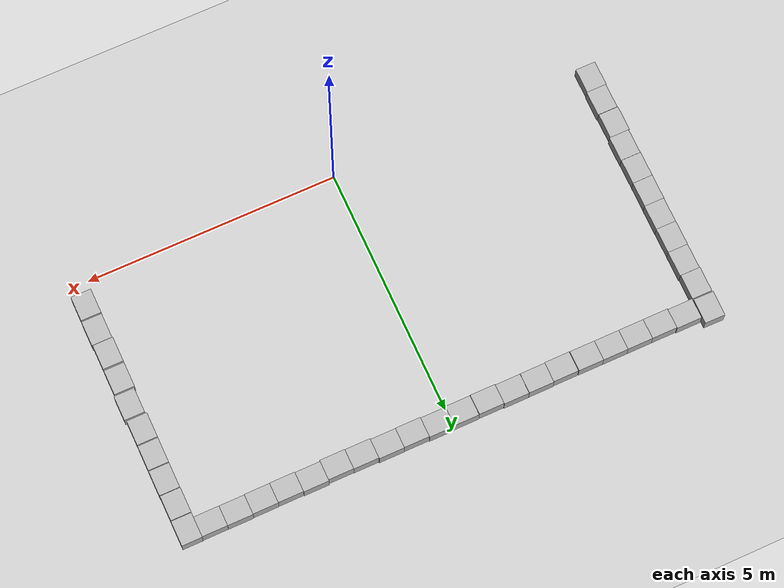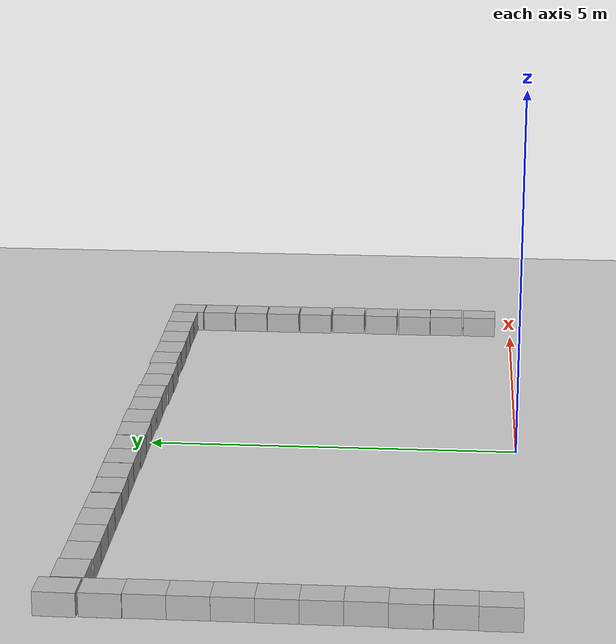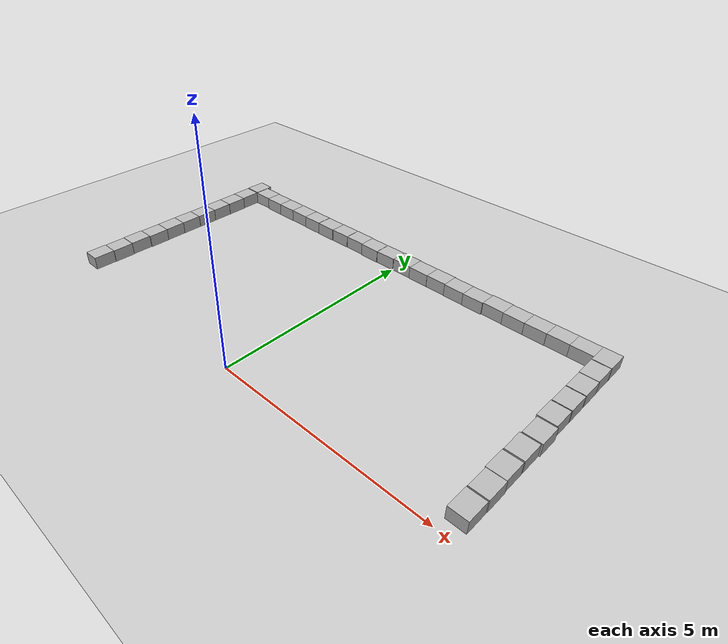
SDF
<sdf version="1.7">
 <world name="default">
  <model name="ground_plane">
   <static>1</static>
   <link name="link">
    <collision name="collision">
     <geometry><plane><normal>0 0 1</normal><size>100 100</size></plane></geometry>
     <surface>
      <contact><collide_bitmask>65535</collide_bitmask></contact>
      <friction><ode><mu>100</mu><mu2>50</mu2></ode></friction>
     </surface>
    </collision>
    <visual name="visual">
     <cast_shadows>0</cast_shadows>
     <geometry><plane><normal>0 0 1</normal><size>100 100</size></plane></geometry>
     <material>
      <script><uri>file://media/materials/scripts/gazebo.material</uri><name>Gazebo/Grey</name></script>
     </material>
    </visual>
   </link>
  </model>
  <model name="cardboard_box">
   <pose>5.20797 5.16251 0.149 0 0 -1.57037</pose>
   <link name="link">
    <inertial>
     <mass>2</mass>
     <inertia>
      <ixx>0.0416667</ixx>
      <ixy>0</ixy>
      <ixz>0</ixz>
      <iyy>0.0566667</iyy>
      <iyz>0</iyz>
      <izz>0.0683333</izz>
     </inertia>
    </inertial>
    <collision name="collision">
     <geometry><box><size>0.5 0.4 0.3</size></box></geometry>
     <surface>
      <friction><ode><mu>1</mu><mu2>1</mu2></ode></friction>
      <contact><ode><kp>1e+07</kp><kd>1</kd><min_depth>0.001</min_depth><max_vel>0.1</max_vel></ode></contact>
     </surface>
    </collision>
    <visual name="visual">
     <pose>0 0 -0.15 0 -0 0</pose>
     <geometry>
      <mesh><uri>model://cardboard_box/meshes/cardboard_box.dae</uri><scale>1.25932 1.00745 0.755591</scale></mesh>
     </geometry>
    </visual>
   </link>
  </model>
  <model name="cardboard_box_clone_0">
   <pose>4.75812 5.20518 0.149 0 -0 5.5e-05</pose>
   <link name="link">
    <inertial>
     <mass>2</mass>
     <inertia>
      <ixx>0.0416667</ixx>
      <ixy>0</ixy>
      <ixz>0</ixz>
      <iyy>0.0566667</iyy>
      <iyz>0</iyz>
      <izz>0.0683333</izz>
     </inertia>
    </inertial>
    <collision name="collision">
     <geometry><box><size>0.5 0.4 0.3</size></box></geometry>
     <surface>
      <friction><ode><mu>1</mu><mu2>1</mu2></ode></friction>
      <contact><ode><kp>1e+07</kp><kd>1</kd><min_depth>0.001</min_depth><max_vel>0.1</max_vel></ode></contact>
     </surface>
    </collision>
    <visual name="visual">
     <pose>0 0 -0.15 0 -0 0</pose>
     <geometry>
      <mesh><uri>model://cardboard_box/meshes/cardboard_box.dae</uri><scale>1.25932 1.00745 0.755591</scale></mesh>
     </geometry>
    </visual>
   </link>
  </model>
  <model name="cardboard_box_clone">
   <pose>5.20585 4.65107 0.149 0 0 -1.57145</pose>
   <link name="link">
    <inertial>
     <mass>2</mass>
     <inertia>
      <ixx>0.0416667</ixx>
      <ixy>0</ixy>
      <ixz>0</ixz>
      <iyy>0.0566667</iyy>
      <iyz>0</iyz>
      <izz>0.0683333</izz>
     </inertia>
    </inertial>
    <collision name="collision">
     <geometry><box><size>0.5 0.4 0.3</size></box></geometry>
     <surface>
      <friction><ode><mu>1</mu><mu2>1</mu2></ode></friction>
      <contact><ode><kp>1e+07</kp><kd>1</kd><min_depth>0.001</min_depth><max_vel>0.1</max_vel></ode></contact>
     </surface>
    </collision>
    <visual name="visual">
     <pose>0 0 -0.15 0 -0 0</pose>
     <geometry>
      <mesh><uri>model://cardboard_box/meshes/cardboard_box.dae</uri><scale>1.25932 1.00745 0.755591</scale></mesh>
     </geometry>
    </visual>
   </link>
  </model>
  <model name="cardboard_box_clone_1">
   <pose>5.21075 4.14182 0.149 0 0 -1.57145</pose>
   <link name="link">
    <inertial>
     <mass>2</mass>
     <inertia>
      <ixx>0.0416667</ixx>
      <ixy>0</ixy>
      <ixz>0</ixz>
      <iyy>0.0566667</iyy>
      <iyz>0</iyz>
      <izz>0.0683333</izz>
     </inertia>
    </inertial>
    <collision name="collision">
     <geometry><box><size>0.5 0.4 0.3</size></box></geometry>
     <surface>
      <friction><ode><mu>1</mu><mu2>1</mu2></ode></friction>
      <contact><ode><kp>1e+07</kp><kd>1</kd><min_depth>0.001</min_depth><max_vel>0.1</max_vel></ode></contact>
     </surface>
    </collision>
    <visual name="visual">
     <pose>0 0 -0.15 0 -0 0</pose>
     <geometry>
      <mesh><uri>model://cardboard_box/meshes/cardboard_box.dae</uri><scale>1.25932 1.00745 0.755591</scale></mesh>
     </geometry>
    </visual>
   </link>
  </model>
  <model name="cardboard_box_clone_2">
   <pose>5.20912 3.62631 0.149 0 0 -1.57145</pose>
   <link name="link">
    <inertial>
     <mass>2</mass>
     <inertia>
      <ixx>0.0416667</ixx>
      <ixy>0</ixy>
      <ixz>0</ixz>
      <iyy>0.0566667</iyy>
      <iyz>0</iyz>
      <izz>0.0683333</izz>
     </inertia>
    </inertial>
    <collision name="collision">
     <geometry><box><size>0.5 0.4 0.3</size></box></geometry>
     <surface>
      <friction><ode><mu>1</mu><mu2>1</mu2></ode></friction>
      <contact><ode><kp>1e+07</kp><kd>1</kd><min_depth>0.001</min_depth><max_vel>0.1</max_vel></ode></contact>
     </surface>
    </collision>
    <visual name="visual">
     <pose>0 0 -0.15 0 -0 0</pose>
     <geometry>
      <mesh><uri>model://cardboard_box/meshes/cardboard_box.dae</uri><scale>1.25932 1.00745 0.755591</scale></mesh>
     </geometry>
    </visual>
   </link>
  </model>
  <model name="cardboard_box_clone_3">
   <pose>5.20747 3.10773 0.149 0 0 -1.57145</pose>
   <link name="link">
    <inertial>
     <mass>2</mass>
     <inertia>
      <ixx>0.0416667</ixx>
      <ixy>0</ixy>
      <ixz>0</ixz>
      <iyy>0.0566667</iyy>
      <iyz>0</iyz>
      <izz>0.0683333</izz>
     </inertia>
    </inertial>
    <collision name="collision">
     <geometry><box><size>0.5 0.4 0.3</size></box></geometry>
     <surface>
      <friction><ode><mu>1</mu><mu2>1</mu2></ode></friction>
      <contact><ode><kp>1e+07</kp><kd>1</kd><min_depth>0.001</min_depth><max_vel>0.1</max_vel></ode></contact>
     </surface>
    </collision>
    <visual name="visual">
     <pose>0 0 -0.15 0 -0 0</pose>
     <geometry>
      <mesh><uri>model://cardboard_box/meshes/cardboard_box.dae</uri><scale>1.25932 1.00745 0.755591</scale></mesh>
     </geometry>
    </visual>
   </link>
  </model>
  <model name="cardboard_box_clone_3_clone">
   <pose>5.23714 2.581 0.149 0 0 -1.57059</pose>
   <link name="link">
    <inertial>
     <mass>2</mass>
     <inertia>
      <ixx>0.0416667</ixx>
      <ixy>0</ixy>
      <ixz>0</ixz>
      <iyy>0.0566667</iyy>
      <iyz>0</iyz>
      <izz>0.0683333</izz>
     </inertia>
    </inertial>
    <collision name="collision">
     <geometry><box><size>0.5 0.4 0.3</size></box></geometry>
     <surface>
      <friction><ode><mu>1</mu><mu2>1</mu2></ode></friction>
      <contact><ode><kp>1e+07</kp><kd>1</kd><min_depth>0.001</min_depth><max_vel>0.1</max_vel></ode></contact>
     </surface>
    </collision>
    <visual name="visual">
     <pose>0 0 -0.15 0 -0 0</pose>
     <geometry>
      <mesh><uri>model://cardboard_box/meshes/cardboard_box.dae</uri><scale>1.25932 1.00745 0.755591</scale></mesh>
     </geometry>
    </visual>
   </link>
  </model>
  <model name="cardboard_box_clone_3_clone_0">
   <pose>5.21488 2.0557 0.149 -0 -0 -1.57057</pose>
   <link name="link">
    <inertial>
     <mass>2</mass>
     <inertia>
      <ixx>0.0416667</ixx>
      <ixy>0</ixy>
      <ixz>0</ixz>
      <iyy>0.0566667</iyy>
      <iyz>0</iyz>
      <izz>0.0683333</izz>
     </inertia>
    </inertial>
    <collision name="collision">
     <geometry><box><size>0.5 0.4 0.3</size></box></geometry>
     <surface>
      <friction><ode><mu>1</mu><mu2>1</mu2></ode></friction>
      <contact><ode><kp>1e+07</kp><kd>1</kd><min_depth>0.001</min_depth><max_vel>0.1</max_vel></ode></contact>
     </surface>
    </collision>
    <visual name="visual">
     <pose>0 0 -0.15 0 -0 0</pose>
     <geometry>
      <mesh><uri>model://cardboard_box/meshes/cardboard_box.dae</uri><scale>1.25932 1.00745 0.755591</scale></mesh>
     </geometry>
    </visual>
   </link>
  </model>
  <model name="cardboard_box_clone_3_clone_1">
   <pose>5.21446 1.52585 0.149 0 0 -1.57083</pose>
   <link name="link">
    <inertial>
     <mass>2</mass>
     <inertia>
      <ixx>0.0416667</ixx>
      <ixy>0</ixy>
      <ixz>0</ixz>
      <iyy>0.0566667</iyy>
      <iyz>0</iyz>
      <izz>0.0683333</izz>
     </inertia>
    </inertial>
    <collision name="collision">
     <geometry><box><size>0.5 0.4 0.3</size></box></geometry>
     <surface>
      <friction><ode><mu>1</mu><mu2>1</mu2></ode></friction>
      <contact><ode><kp>1e+07</kp><kd>1</kd><min_depth>0.001</min_depth><max_vel>0.1</max_vel></ode></contact>
     </surface>
    </collision>
    <visual name="visual">
     <pose>0 0 -0.15 0 -0 0</pose>
     <geometry>
      <mesh><uri>model://cardboard_box/meshes/cardboard_box.dae</uri><scale>1.25932 1.00745 0.755591</scale></mesh>
     </geometry>
    </visual>
   </link>
  </model>
  <model name="cardboard_box_clone_3_clone_2">
   <pose>5.22751 1.02138 0.149 0 -0 -1.57082</pose>
   <link name="link">
    <inertial>
     <mass>2</mass>
     <inertia>
      <ixx>0.0416667</ixx>
      <ixy>0</ixy>
      <ixz>0</ixz>
      <iyy>0.0566667</iyy>
      <iyz>0</iyz>
      <izz>0.0683333</izz>
     </inertia>
    </inertial>
    <collision name="collision">
     <geometry><box><size>0.5 0.4 0.3</size></box></geometry>
     <surface>
      <friction><ode><mu>1</mu><mu2>1</mu2></ode></friction>
      <contact><ode><kp>1e+07</kp><kd>1</kd><min_depth>0.001</min_depth><max_vel>0.1</max_vel></ode></contact>
     </surface>
    </collision>
    <visual name="visual">
     <pose>0 0 -0.15 0 -0 0</pose>
     <geometry>
      <mesh><uri>model://cardboard_box/meshes/cardboard_box.dae</uri><scale>1.25932 1.00745 0.755591</scale></mesh>
     </geometry>
    </visual>
   </link>
  </model>
  <model name="cardboard_box_clone_3_clone_3">
   <pose>5.22362 0.496907 0.149 -0 -0 -1.57095</pose>
   <link name="link">
    <inertial>
     <mass>2</mass>
     <inertia>
      <ixx>0.0416667</ixx>
      <ixy>0</ixy>
      <ixz>0</ixz>
      <iyy>0.0566667</iyy>
      <iyz>0</iyz>
      <izz>0.0683333</izz>
     </inertia>
    </inertial>
    <collision name="collision">
     <geometry><box><size>0.5 0.4 0.3</size></box></geometry>
     <surface>
      <friction><ode><mu>1</mu><mu2>1</mu2></ode></friction>
      <contact><ode><kp>1e+07</kp><kd>1</kd><min_depth>0.001</min_depth><max_vel>0.1</max_vel></ode></contact>
     </surface>
    </collision>
    <visual name="visual">
     <pose>0 0 -0.15 0 -0 0</pose>
     <geometry>
      <mesh><uri>model://cardboard_box/meshes/cardboard_box.dae</uri><scale>1.25932 1.00745 0.755591</scale></mesh>
     </geometry>
    </visual>
   </link>
  </model>
  <model name="cardboard_box_clone_3_clone_12_clone_clone_1_clone_5">
   <pose>-5.22101 0.269066 0.149 0 -0 -1.57092</pose>
   <link name="link">
    <inertial>
     <mass>2</mass>
     <inertia>
      <ixx>0.0416667</ixx>
      <ixy>0</ixy>
      <ixz>0</ixz>
      <iyy>0.0566667</iyy>
      <iyz>0</iyz>
      <izz>0.0683333</izz>
     </inertia>
    </inertial>
    <collision name="collision">
     <geometry><box><size>0.5 0.4 0.3</size></box></geometry>
     <surface>
      <friction><ode><mu>1</mu><mu2>1</mu2></ode></friction>
      <contact><ode><kp>1e+07</kp><kd>1</kd><min_depth>0.001</min_depth><max_vel>0.1</max_vel></ode></contact>
     </surface>
    </collision>
    <visual name="visual">
     <pose>0 0 -0.15 0 -0 0</pose>
     <geometry>
      <mesh><uri>model://cardboard_box/meshes/cardboard_box.dae</uri><scale>1.25932 1.00745 0.755591</scale></mesh>
     </geometry>
    </visual>
   </link>
  </model>
  <model name="cardboard_box_clone_3_clone_12_clone_clone_1_clone_5_clone">
   <pose>-5.20919 0.768373 0.149 0 0 -1.57092</pose>
   <link name="link">
    <inertial>
     <mass>2</mass>
     <inertia>
      <ixx>0.0416667</ixx>
      <ixy>0</ixy>
      <ixz>0</ixz>
      <iyy>0.0566667</iyy>
      <iyz>0</iyz>
      <izz>0.0683333</izz>
     </inertia>
    </inertial>
    <collision name="collision">
     <geometry><box><size>0.5 0.4 0.3</size></box></geometry>
     <surface>
      <friction><ode><mu>1</mu><mu2>1</mu2></ode></friction>
      <contact><ode><kp>1e+07</kp><kd>1</kd><min_depth>0.001</min_depth><max_vel>0.1</max_vel></ode></contact>
     </surface>
    </collision>
    <visual name="visual">
     <pose>0 0 -0.15 0 -0 0</pose>
     <geometry>
      <mesh><uri>model://cardboard_box/meshes/cardboard_box.dae</uri><scale>1.25932 1.00745 0.755591</scale></mesh>
     </geometry>
    </visual>
   </link>
  </model>
  <model name="cardboard_box_clone_3_clone_12_clone_clone_1_clone_5_clone_0">
   <pose>-5.22042 1.27408 0.149 0 -0 -1.5714</pose>
   <link name="link">
    <inertial>
     <mass>2</mass>
     <inertia>
      <ixx>0.0416667</ixx>
      <ixy>0</ixy>
      <ixz>0</ixz>
      <iyy>0.0566667</iyy>
      <iyz>0</iyz>
      <izz>0.0683333</izz>
     </inertia>
    </inertial>
    <collision name="collision">
     <geometry><box><size>0.5 0.4 0.3</size></box></geometry>
     <surface>
      <friction><ode><mu>1</mu><mu2>1</mu2></ode></friction>
      <contact><ode><kp>1e+07</kp><kd>1</kd><min_depth>0.001</min_depth><max_vel>0.1</max_vel></ode></contact>
     </surface>
    </collision>
    <visual name="visual">
     <pose>0 0 -0.15 0 -0 0</pose>
     <geometry>
      <mesh><uri>model://cardboard_box/meshes/cardboard_box.dae</uri><scale>1.25932 1.00745 0.755591</scale></mesh>
     </geometry>
    </visual>
   </link>
  </model>
  <model name="cardboard_box_clone_3_clone_12_clone_clone_1_clone_5_clone_1">
   <pose>-5.20005 1.7737 0.149 0 0 -1.57099</pose>
   <link name="link">
    <inertial>
     <mass>2</mass>
     <inertia>
      <ixx>0.0416667</ixx>
      <ixy>0</ixy>
      <ixz>0</ixz>
      <iyy>0.0566667</iyy>
      <iyz>0</iyz>
      <izz>0.0683333</izz>
     </inertia>
    </inertial>
    <collision name="collision">
     <geometry><box><size>0.5 0.4 0.3</size></box></geometry>
     <surface>
      <friction><ode><mu>1</mu><mu2>1</mu2></ode></friction>
      <contact><ode><kp>1e+07</kp><kd>1</kd><min_depth>0.001</min_depth><max_vel>0.1</max_vel></ode></contact>
     </surface>
    </collision>
    <visual name="visual">
     <pose>0 0 -0.15 0 -0 0</pose>
     <geometry>
      <mesh><uri>model://cardboard_box/meshes/cardboard_box.dae</uri><scale>1.25932 1.00745 0.755591</scale></mesh>
     </geometry>
    </visual>
   </link>
  </model>
  <model name="cardboard_box_clone_3_clone_12_clone_clone_1_clone_5_clone_2">
   <pose>-5.20466 2.27451 0.149 -0 -0 -1.57084</pose>
   <link name="link">
    <inertial>
     <mass>2</mass>
     <inertia>
      <ixx>0.0416667</ixx>
      <ixy>0</ixy>
      <ixz>0</ixz>
      <iyy>0.0566667</iyy>
      <iyz>0</iyz>
      <izz>0.0683333</izz>
     </inertia>
    </inertial>
    <collision name="collision">
     <geometry><box><size>0.5 0.4 0.3</size></box></geometry>
     <surface>
      <friction><ode><mu>1</mu><mu2>1</mu2></ode></friction>
      <contact><ode><kp>1e+07</kp><kd>1</kd><min_depth>0.001</min_depth><max_vel>0.1</max_vel></ode></contact>
     </surface>
    </collision>
    <visual name="visual">
     <pose>0 0 -0.15 0 -0 0</pose>
     <geometry>
      <mesh><uri>model://cardboard_box/meshes/cardboard_box.dae</uri><scale>1.25932 1.00745 0.755591</scale></mesh>
     </geometry>
    </visual>
   </link>
  </model>
  <model name="cardboard_box_clone_3_clone_12_clone_clone_1_clone_5_clone_3">
   <pose>-5.20316 2.7746 0.149 0 -0 -1.57052</pose>
   <link name="link">
    <inertial>
     <mass>2</mass>
     <inertia>
      <ixx>0.0416667</ixx>
      <ixy>0</ixy>
      <ixz>0</ixz>
      <iyy>0.0566667</iyy>
      <iyz>0</iyz>
      <izz>0.0683333</izz>
     </inertia>
    </inertial>
    <collision name="collision">
     <geometry><box><size>0.5 0.4 0.3</size></box></geometry>
     <surface>
      <friction><ode><mu>1</mu><mu2>1</mu2></ode></friction>
      <contact><ode><kp>1e+07</kp><kd>1</kd><min_depth>0.001</min_depth><max_vel>0.1</max_vel></ode></contact>
     </surface>
    </collision>
    <visual name="visual">
     <pose>0 0 -0.15 0 -0 0</pose>
     <geometry>
      <mesh><uri>model://cardboard_box/meshes/cardboard_box.dae</uri><scale>1.25932 1.00745 0.755591</scale></mesh>
     </geometry>
    </visual>
   </link>
  </model>
  <model name="cardboard_box_clone_3_clone_12_clone_clone_1_clone_5_clone_4">
   <pose>-5.19813 3.27387 0.149 0 0 -1.57011</pose>
   <link name="link">
    <inertial>
     <mass>2</mass>
     <inertia>
      <ixx>0.0416667</ixx>
      <ixy>0</ixy>
      <ixz>0</ixz>
      <iyy>0.0566667</iyy>
      <iyz>0</iyz>
      <izz>0.0683333</izz>
     </inertia>
    </inertial>
    <collision name="collision">
     <geometry><box><size>0.5 0.4 0.3</size></box></geometry>
     <surface>
      <friction><ode><mu>1</mu><mu2>1</mu2></ode></friction>
      <contact><ode><kp>1e+07</kp><kd>1</kd><min_depth>0.001</min_depth><max_vel>0.1</max_vel></ode></contact>
     </surface>
    </collision>
    <visual name="visual">
     <pose>0 0 -0.15 0 -0 0</pose>
     <geometry>
      <mesh><uri>model://cardboard_box/meshes/cardboard_box.dae</uri><scale>1.25932 1.00745 0.755591</scale></mesh>
     </geometry>
    </visual>
   </link>
  </model>
  <model name="cardboard_box_clone_3_clone_12_clone_clone_1_clone_5_clone_5">
   <pose>-5.19993 3.77344 0.149 0 0 -1.56923</pose>
   <link name="link">
    <inertial>
     <mass>2</mass>
     <inertia>
      <ixx>0.0416667</ixx>
      <ixy>0</ixy>
      <ixz>0</ixz>
      <iyy>0.0566667</iyy>
      <iyz>0</iyz>
      <izz>0.0683333</izz>
     </inertia>
    </inertial>
    <collision name="collision">
     <geometry><box><size>0.5 0.4 0.3</size></box></geometry>
     <surface>
      <friction><ode><mu>1</mu><mu2>1</mu2></ode></friction>
      <contact><ode><kp>1e+07</kp><kd>1</kd><min_depth>0.001</min_depth><max_vel>0.1</max_vel></ode></contact>
     </surface>
    </collision>
    <visual name="visual">
     <pose>0 0 -0.15 0 -0 0</pose>
     <geometry>
      <mesh><uri>model://cardboard_box/meshes/cardboard_box.dae</uri><scale>1.25932 1.00745 0.755591</scale></mesh>
     </geometry>
    </visual>
   </link>
  </model>
  <model name="cardboard_box_clone_3_clone_12_clone_clone_1_clone_5_clone_6">
   <pose>-5.19779 4.27355 0.149 0 -0 -1.56997</pose>
   <link name="link">
    <inertial>
     <mass>2</mass>
     <inertia>
      <ixx>0.0416667</ixx>
      <ixy>0</ixy>
      <ixz>0</ixz>
      <iyy>0.0566667</iyy>
      <iyz>0</iyz>
      <izz>0.0683333</izz>
     </inertia>
    </inertial>
    <collision name="collision">
     <geometry><box><size>0.5 0.4 0.3</size></box></geometry>
     <surface>
      <friction><ode><mu>1</mu><mu2>1</mu2></ode></friction>
      <contact><ode><kp>1e+07</kp><kd>1</kd><min_depth>0.001</min_depth><max_vel>0.1</max_vel></ode></contact>
     </surface>
    </collision>
    <visual name="visual">
     <pose>0 0 -0.15 0 -0 0</pose>
     <geometry>
      <mesh><uri>model://cardboard_box/meshes/cardboard_box.dae</uri><scale>1.25932 1.00745 0.755591</scale></mesh>
     </geometry>
    </visual>
   </link>
  </model>
  <model name="cardboard_box_clone_3_clone_12_clone_clone_1_clone_5_clone_7">
   <pose>-5.20764 4.77393 0.149 0 0 -1.57685</pose>
   <link name="link">
    <inertial>
     <mass>2</mass>
     <inertia>
      <ixx>0.0416667</ixx>
      <ixy>0</ixy>
      <ixz>0</ixz>
      <iyy>0.0566667</iyy>
      <iyz>0</iyz>
      <izz>0.0683333</izz>
     </inertia>
    </inertial>
    <collision name="collision">
     <geometry><box><size>0.5 0.4 0.3</size></box></geometry>
     <surface>
      <friction><ode><mu>1</mu><mu2>1</mu2></ode></friction>
      <contact><ode><kp>1e+07</kp><kd>1</kd><min_depth>0.001</min_depth><max_vel>0.1</max_vel></ode></contact>
     </surface>
    </collision>
    <visual name="visual">
     <pose>0 0 -0.15 0 -0 0</pose>
     <geometry>
      <mesh><uri>model://cardboard_box/meshes/cardboard_box.dae</uri><scale>1.25932 1.00745 0.755591</scale></mesh>
     </geometry>
    </visual>
   </link>
  </model>
  <model name="cardboard_box_clone_3_clone_12_clone_clone_1_clone_5_clone_8">
   <pose>-5.21767 5.29456 0.149 0 0 -1.58605</pose>
   <link name="link">
    <inertial>
     <mass>2</mass>
     <inertia>
      <ixx>0.0416667</ixx>
      <ixy>0</ixy>
      <ixz>0</ixz>
      <iyy>0.0566667</iyy>
      <iyz>0</iyz>
      <izz>0.0683333</izz>
     </inertia>
    </inertial>
    <collision name="collision">
     <geometry><box><size>0.5 0.4 0.3</size></box></geometry>
     <surface>
      <friction><ode><mu>1</mu><mu2>1</mu2></ode></friction>
      <contact><ode><kp>1e+07</kp><kd>1</kd><min_depth>0.001</min_depth><max_vel>0.1</max_vel></ode></contact>
     </surface>
    </collision>
    <visual name="visual">
     <pose>0 0 -0.15 0 -0 0</pose>
     <geometry>
      <mesh><uri>model://cardboard_box/meshes/cardboard_box.dae</uri><scale>1.25932 1.00745 0.755591</scale></mesh>
     </geometry>
    </visual>
   </link>
  </model>
  <model name="cardboard_box_clone_0_clone_clone_1_clone_clone_3_clone_3_clone_0_clone">
   <pose>-4.75199 5.21666 0.149 0 -0 0.000103</pose>
   <link name="link">
    <inertial>
     <mass>2</mass>
     <inertia>
      <ixx>0.0416667</ixx>
      <ixy>0</ixy>
      <ixz>0</ixz>
      <iyy>0.0566667</iyy>
      <iyz>0</iyz>
      <izz>0.0683333</izz>
     </inertia>
    </inertial>
    <collision name="collision">
     <geometry><box><size>0.5 0.4 0.3</size></box></geometry>
     <surface>
      <friction><ode><mu>1</mu><mu2>1</mu2></ode></friction>
      <contact><ode><kp>1e+07</kp><kd>1</kd><min_depth>0.001</min_depth><max_vel>0.1</max_vel></ode></contact>
     </surface>
    </collision>
    <visual name="visual">
     <pose>0 0 -0.15 0 -0 0</pose>
     <geometry>
      <mesh><uri>model://cardboard_box/meshes/cardboard_box.dae</uri><scale>1.25932 1.00745 0.755591</scale></mesh>
     </geometry>
    </visual>
   </link>
  </model>
  <model name="cardboard_box_clone_0_clone_clone_1_clone_clone_3_clone_3_clone_0_clone_clone">
   <pose>-4.25241 5.20223 0.149 0 -0 0.000138</pose>
   <link name="link">
    <inertial>
     <mass>2</mass>
     <inertia>
      <ixx>0.0416667</ixx>
      <ixy>0</ixy>
      <ixz>0</ixz>
      <iyy>0.0566667</iyy>
      <iyz>0</iyz>
      <izz>0.0683333</izz>
     </inertia>
    </inertial>
    <collision name="collision">
     <geometry><box><size>0.5 0.4 0.3</size></box></geometry>
     <surface>
      <friction><ode><mu>1</mu><mu2>1</mu2></ode></friction>
      <contact><ode><kp>1e+07</kp><kd>1</kd><min_depth>0.001</min_depth><max_vel>0.1</max_vel></ode></contact>
     </surface>
    </collision>
    <visual name="visual">
     <pose>0 0 -0.15 0 -0 0</pose>
     <geometry>
      <mesh><uri>model://cardboard_box/meshes/cardboard_box.dae</uri><scale>1.25932 1.00745 0.755591</scale></mesh>
     </geometry>
    </visual>
   </link>
  </model>
  <model name="cardboard_box_clone_0_clone_clone_1_clone_clone_3_clone_3_clone_0_clone_clone_0">
   <pose>-3.75339 5.20287 0.149 0 -0 0.000191</pose>
   <link name="link">
    <inertial>
     <mass>2</mass>
     <inertia>
      <ixx>0.0416667</ixx>
      <ixy>0</ixy>
      <ixz>0</ixz>
      <iyy>0.0566667</iyy>
      <iyz>0</iyz>
      <izz>0.0683333</izz>
     </inertia>
    </inertial>
    <collision name="collision">
     <geometry><box><size>0.5 0.4 0.3</size></box></geometry>
     <surface>
      <friction><ode><mu>1</mu><mu2>1</mu2></ode></friction>
      <contact><ode><kp>1e+07</kp><kd>1</kd><min_depth>0.001</min_depth><max_vel>0.1</max_vel></ode></contact>
     </surface>
    </collision>
    <visual name="visual">
     <pose>0 0 -0.15 0 -0 0</pose>
     <geometry>
      <mesh><uri>model://cardboard_box/meshes/cardboard_box.dae</uri><scale>1.25932 1.00745 0.755591</scale></mesh>
     </geometry>
    </visual>
   </link>
  </model>
  <model name="cardboard_box_clone_0_clone_clone_1_clone_clone_3_clone_3_clone_0_clone_clone_1">
   <pose>-3.25391 5.20345 0.149 0 -0 0.000266</pose>
   <link name="link">
    <inertial>
     <mass>2</mass>
     <inertia>
      <ixx>0.0416667</ixx>
      <ixy>0</ixy>
      <ixz>0</ixz>
      <iyy>0.0566667</iyy>
      <iyz>0</iyz>
      <izz>0.0683333</izz>
     </inertia>
    </inertial>
    <collision name="collision">
     <geometry><box><size>0.5 0.4 0.3</size></box></geometry>
     <surface>
      <friction><ode><mu>1</mu><mu2>1</mu2></ode></friction>
      <contact><ode><kp>1e+07</kp><kd>1</kd><min_depth>0.001</min_depth><max_vel>0.1</max_vel></ode></contact>
     </surface>
    </collision>
    <visual name="visual">
     <pose>0 0 -0.15 0 -0 0</pose>
     <geometry>
      <mesh><uri>model://cardboard_box/meshes/cardboard_box.dae</uri><scale>1.25932 1.00745 0.755591</scale></mesh>
     </geometry>
    </visual>
   </link>
  </model>
  <model name="cardboard_box_clone_0_clone_clone_1_clone_clone_3_clone_3_clone_0_clone_clone_2">
   <pose>-2.7545 5.20218 0.149 0 -0 0.000272</pose>
   <link name="link">
    <inertial>
     <mass>2</mass>
     <inertia>
      <ixx>0.0416667</ixx>
      <ixy>0</ixy>
      <ixz>0</ixz>
      <iyy>0.0566667</iyy>
      <iyz>0</iyz>
      <izz>0.0683333</izz>
     </inertia>
    </inertial>
    <collision name="collision">
     <geometry><box><size>0.5 0.4 0.3</size></box></geometry>
     <surface>
      <friction><ode><mu>1</mu><mu2>1</mu2></ode></friction>
      <contact><ode><kp>1e+07</kp><kd>1</kd><min_depth>0.001</min_depth><max_vel>0.1</max_vel></ode></contact>
     </surface>
    </collision>
    <visual name="visual">
     <pose>0 0 -0.15 0 -0 0</pose>
     <geometry>
      <mesh><uri>model://cardboard_box/meshes/cardboard_box.dae</uri><scale>1.25932 1.00745 0.755591</scale></mesh>
     </geometry>
    </visual>
   </link>
  </model>
  <model name="cardboard_box_clone_0_clone_clone_1_clone_clone_3_clone_3_clone_0_clone_clone_2_clone">
   <pose>-2.24487 5.19947 0.149 0 -0 0.000272</pose>
   <link name="link">
    <inertial>
     <mass>2</mass>
     <inertia>
      <ixx>0.0416667</ixx>
      <ixy>0</ixy>
      <ixz>0</ixz>
      <iyy>0.0566667</iyy>
      <iyz>0</iyz>
      <izz>0.0683333</izz>
     </inertia>
    </inertial>
    <collision name="collision">
     <geometry><box><size>0.5 0.4 0.3</size></box></geometry>
     <surface>
      <friction><ode><mu>1</mu><mu2>1</mu2></ode></friction>
      <contact><ode><kp>1e+07</kp><kd>1</kd><min_depth>0.001</min_depth><max_vel>0.1</max_vel></ode></contact>
     </surface>
    </collision>
    <visual name="visual">
     <pose>0 0 -0.15 0 -0 0</pose>
     <geometry>
      <mesh><uri>model://cardboard_box/meshes/cardboard_box.dae</uri><scale>1.25932 1.00745 0.755591</scale></mesh>
     </geometry>
    </visual>
   </link>
  </model>
  <model name="cardboard_box_clone_0_clone_clone_1_clone_clone_3_clone_3_clone_0_clone_clone_2_clone_0">
   <pose>-1.74572 5.20828 0.149 0 -0 0.000272</pose>
   <link name="link">
    <inertial>
     <mass>2</mass>
     <inertia>
      <ixx>0.0416667</ixx>
      <ixy>0</ixy>
      <ixz>0</ixz>
      <iyy>0.0566667</iyy>
      <iyz>0</iyz>
      <izz>0.0683333</izz>
     </inertia>
    </inertial>
    <collision name="collision">
     <geometry><box><size>0.5 0.4 0.3</size></box></geometry>
     <surface>
      <friction><ode><mu>1</mu><mu2>1</mu2></ode></friction>
      <contact><ode><kp>1e+07</kp><kd>1</kd><min_depth>0.001</min_depth><max_vel>0.1</max_vel></ode></contact>
     </surface>
    </collision>
    <visual name="visual">
     <pose>0 0 -0.15 0 -0 0</pose>
     <geometry>
      <mesh><uri>model://cardboard_box/meshes/cardboard_box.dae</uri><scale>1.25932 1.00745 0.755591</scale></mesh>
     </geometry>
    </visual>
   </link>
  </model>
  <model name="cardboard_box_clone_0_clone_clone_1_clone_clone_3_clone_3_clone_0_clone_clone_2_clone_1">
   <pose>-1.24242 5.21096 0.149 0 -0 0.000272</pose>
   <link name="link">
    <inertial>
     <mass>2</mass>
     <inertia>
      <ixx>0.0416667</ixx>
      <ixy>0</ixy>
      <ixz>0</ixz>
      <iyy>0.0566667</iyy>
      <iyz>0</iyz>
      <izz>0.0683333</izz>
     </inertia>
    </inertial>
    <collision name="collision">
     <geometry><box><size>0.5 0.4 0.3</size></box></geometry>
     <surface>
      <friction><ode><mu>1</mu><mu2>1</mu2></ode></friction>
      <contact><ode><kp>1e+07</kp><kd>1</kd><min_depth>0.001</min_depth><max_vel>0.1</max_vel></ode></contact>
     </surface>
    </collision>
    <visual name="visual">
     <pose>0 0 -0.15 0 -0 0</pose>
     <geometry>
      <mesh><uri>model://cardboard_box/meshes/cardboard_box.dae</uri><scale>1.25932 1.00745 0.755591</scale></mesh>
     </geometry>
    </visual>
   </link>
  </model>
  <model name="cardboard_box_clone_0_clone_clone_1_clone_clone_3_clone_3_clone_0_clone_clone_2_clone_2">
   <pose>-0.743264 5.19859 0.149 0 -0 0.000272</pose>
   <link name="link">
    <inertial>
     <mass>2</mass>
     <inertia>
      <ixx>0.0416667</ixx>
      <ixy>0</ixy>
      <ixz>0</ixz>
      <iyy>0.0566667</iyy>
      <iyz>0</iyz>
      <izz>0.0683333</izz>
     </inertia>
    </inertial>
    <collision name="collision">
     <geometry><box><size>0.5 0.4 0.3</size></box></geometry>
     <surface>
      <friction><ode><mu>1</mu><mu2>1</mu2></ode></friction>
      <contact><ode><kp>1e+07</kp><kd>1</kd><min_depth>0.001</min_depth><max_vel>0.1</max_vel></ode></contact>
     </surface>
    </collision>
    <visual name="visual">
     <pose>0 0 -0.15 0 -0 0</pose>
     <geometry>
      <mesh><uri>model://cardboard_box/meshes/cardboard_box.dae</uri><scale>1.25932 1.00745 0.755591</scale></mesh>
     </geometry>
    </visual>
   </link>
  </model>
  <model name="cardboard_box_clone_0_clone_clone_1_clone_clone_3_clone_3_clone_0_clone_clone_2_clone_3">
   <pose>-0.237873 5.20443 0.149 0 0 -0.000728</pose>
   <link name="link">
    <inertial>
     <mass>2</mass>
     <inertia>
      <ixx>0.0416667</ixx>
      <ixy>0</ixy>
      <ixz>0</ixz>
      <iyy>0.0566667</iyy>
      <iyz>0</iyz>
      <izz>0.0683333</izz>
     </inertia>
    </inertial>
    <collision name="collision">
     <geometry><box><size>0.5 0.4 0.3</size></box></geometry>
     <surface>
      <friction><ode><mu>1</mu><mu2>1</mu2></ode></friction>
      <contact><ode><kp>1e+07</kp><kd>1</kd><min_depth>0.001</min_depth><max_vel>0.1</max_vel></ode></contact>
     </surface>
    </collision>
    <visual name="visual">
     <pose>0 0 -0.15 0 -0 0</pose>
     <geometry>
      <mesh><uri>model://cardboard_box/meshes/cardboard_box.dae</uri><scale>1.25932 1.00745 0.755591</scale></mesh>
     </geometry>
    </visual>
   </link>
  </model>
  <model name="cardboard_box_clone_0_clone_clone_1_clone_clone_3_clone_3_clone_0_clone_clone_2_clone_3_clone">
   <pose>0.261346 5.21523 0.149 0 -0 -0.000831</pose>
   <link name="link">
    <inertial>
     <mass>2</mass>
     <inertia>
      <ixx>0.0416667</ixx>
      <ixy>0</ixy>
      <ixz>0</ixz>
      <iyy>0.0566667</iyy>
      <iyz>0</iyz>
      <izz>0.0683333</izz>
     </inertia>
    </inertial>
    <collision name="collision">
     <geometry><box><size>0.5 0.4 0.3</size></box></geometry>
     <surface>
      <friction><ode><mu>1</mu><mu2>1</mu2></ode></friction>
      <contact><ode><kp>1e+07</kp><kd>1</kd><min_depth>0.001</min_depth><max_vel>0.1</max_vel></ode></contact>
     </surface>
    </collision>
    <visual name="visual">
     <pose>0 0 -0.15 0 -0 0</pose>
     <geometry>
      <mesh><uri>model://cardboard_box/meshes/cardboard_box.dae</uri><scale>1.25932 1.00745 0.755591</scale></mesh>
     </geometry>
    </visual>
   </link>
  </model>
  <model name="cardboard_box_clone_0_clone_clone_1_clone_clone_3_clone_3_clone_0_clone_clone_2_clone_3_clone_0">
   <pose>0.760475 5.20135 0.149 0 0 -0.000784</pose>
   <link name="link">
    <inertial>
     <mass>2</mass>
     <inertia>
      <ixx>0.0416667</ixx>
      <ixy>0</ixy>
      <ixz>0</ixz>
      <iyy>0.0566667</iyy>
      <iyz>0</iyz>
      <izz>0.0683333</izz>
     </inertia>
    </inertial>
    <collision name="collision">
     <geometry><box><size>0.5 0.4 0.3</size></box></geometry>
     <surface>
      <friction><ode><mu>1</mu><mu2>1</mu2></ode></friction>
      <contact><ode><kp>1e+07</kp><kd>1</kd><min_depth>0.001</min_depth><max_vel>0.1</max_vel></ode></contact>
     </surface>
    </collision>
    <visual name="visual">
     <pose>0 0 -0.15 0 -0 0</pose>
     <geometry>
      <mesh><uri>model://cardboard_box/meshes/cardboard_box.dae</uri><scale>1.25932 1.00745 0.755591</scale></mesh>
     </geometry>
    </visual>
   </link>
  </model>
  <model name="cardboard_box_clone_0_clone_clone_1_clone_clone_3_clone_3_clone_0_clone_clone_2_clone_3_clone_1">
   <pose>1.26016 5.20547 0.149 0 -0 -0.000707</pose>
   <link name="link">
    <inertial>
     <mass>2</mass>
     <inertia>
      <ixx>0.0416667</ixx>
      <ixy>0</ixy>
      <ixz>0</ixz>
      <iyy>0.0566667</iyy>
      <iyz>0</iyz>
      <izz>0.0683333</izz>
     </inertia>
    </inertial>
    <collision name="collision">
     <geometry><box><size>0.5 0.4 0.3</size></box></geometry>
     <surface>
      <friction><ode><mu>1</mu><mu2>1</mu2></ode></friction>
      <contact><ode><kp>1e+07</kp><kd>1</kd><min_depth>0.001</min_depth><max_vel>0.1</max_vel></ode></contact>
     </surface>
    </collision>
    <visual name="visual">
     <pose>0 0 -0.15 0 -0 0</pose>
     <geometry>
      <mesh><uri>model://cardboard_box/meshes/cardboard_box.dae</uri><scale>1.25932 1.00745 0.755591</scale></mesh>
     </geometry>
    </visual>
   </link>
  </model>
  <model name="cardboard_box_clone_0_clone_clone_1_clone_clone_3_clone_3_clone_0_clone_clone_2_clone_3_clone_1_clone">
   <pose>1.76013 5.18781 0.149 0 0 -0.000515</pose>
   <link name="link">
    <inertial>
     <mass>2</mass>
     <inertia>
      <ixx>0.0416667</ixx>
      <ixy>0</ixy>
      <ixz>0</ixz>
      <iyy>0.0566667</iyy>
      <iyz>0</iyz>
      <izz>0.0683333</izz>
     </inertia>
    </inertial>
    <collision name="collision">
     <geometry><box><size>0.5 0.4 0.3</size></box></geometry>
     <surface>
      <friction><ode><mu>1</mu><mu2>1</mu2></ode></friction>
      <contact><ode><kp>1e+07</kp><kd>1</kd><min_depth>0.001</min_depth><max_vel>0.1</max_vel></ode></contact>
     </surface>
    </collision>
    <visual name="visual">
     <pose>0 0 -0.15 0 -0 0</pose>
     <geometry>
      <mesh><uri>model://cardboard_box/meshes/cardboard_box.dae</uri><scale>1.25932 1.00745 0.755591</scale></mesh>
     </geometry>
    </visual>
   </link>
  </model>
  <model name="cardboard_box_clone_0_clone_clone_1_clone_clone_3_clone_3_clone_0_clone_clone_2_clone_3_clone_1_clone_0">
   <pose>2.25958 5.18214 0.149 -0 -0 -0.000291</pose>
   <link name="link">
    <inertial>
     <mass>2</mass>
     <inertia>
      <ixx>0.0416667</ixx>
      <ixy>0</ixy>
      <ixz>0</ixz>
      <iyy>0.0566667</iyy>
      <iyz>0</iyz>
      <izz>0.0683333</izz>
     </inertia>
    </inertial>
    <collision name="collision">
     <geometry><box><size>0.5 0.4 0.3</size></box></geometry>
     <surface>
      <friction><ode><mu>1</mu><mu2>1</mu2></ode></friction>
      <contact><ode><kp>1e+07</kp><kd>1</kd><min_depth>0.001</min_depth><max_vel>0.1</max_vel></ode></contact>
     </surface>
    </collision>
    <visual name="visual">
     <pose>0 0 -0.15 0 -0 0</pose>
     <geometry>
      <mesh><uri>model://cardboard_box/meshes/cardboard_box.dae</uri><scale>1.25932 1.00745 0.755591</scale></mesh>
     </geometry>
    </visual>
   </link>
  </model>
  <model name="cardboard_box_clone_0_clone_clone_1_clone_clone_3_clone_3_clone_0_clone_clone_2_clone_3_clone_1_clone_1">
   <pose>2.75869 5.20401 0.149 -0 -0 -0.000163</pose>
   <link name="link">
    <inertial>
     <mass>2</mass>
     <inertia>
      <ixx>0.0416667</ixx>
      <ixy>0</ixy>
      <ixz>0</ixz>
      <iyy>0.0566667</iyy>
      <iyz>0</iyz>
      <izz>0.0683333</izz>
     </inertia>
    </inertial>
    <collision name="collision">
     <geometry><box><size>0.5 0.4 0.3</size></box></geometry>
     <surface>
      <friction><ode><mu>1</mu><mu2>1</mu2></ode></friction>
      <contact><ode><kp>1e+07</kp><kd>1</kd><min_depth>0.001</min_depth><max_vel>0.1</max_vel></ode></contact>
     </surface>
    </collision>
    <visual name="visual">
     <pose>0 0 -0.15 0 -0 0</pose>
     <geometry>
      <mesh><uri>model://cardboard_box/meshes/cardboard_box.dae</uri><scale>1.25932 1.00745 0.755591</scale></mesh>
     </geometry>
    </visual>
   </link>
  </model>
  <model name="cardboard_box_clone_0_clone_clone_1_clone_clone_3_clone_3_clone_0_clone_clone_2_clone_3_clone_1_clone_2">
   <pose>3.25803 5.19443 0.149 0 0 -8.4e-05</pose>
   <link name="link">
    <inertial>
     <mass>2</mass>
     <inertia>
      <ixx>0.0416667</ixx>
      <ixy>0</ixy>
      <ixz>0</ixz>
      <iyy>0.0566667</iyy>
      <iyz>0</iyz>
      <izz>0.0683333</izz>
     </inertia>
    </inertial>
    <collision name="collision">
     <geometry><box><size>0.5 0.4 0.3</size></box></geometry>
     <surface>
      <friction><ode><mu>1</mu><mu2>1</mu2></ode></friction>
      <contact><ode><kp>1e+07</kp><kd>1</kd><min_depth>0.001</min_depth><max_vel>0.1</max_vel></ode></contact>
     </surface>
    </collision>
    <visual name="visual">
     <pose>0 0 -0.15 0 -0 0</pose>
     <geometry>
      <mesh><uri>model://cardboard_box/meshes/cardboard_box.dae</uri><scale>1.25932 1.00745 0.755591</scale></mesh>
     </geometry>
    </visual>
   </link>
  </model>
  <model name="cardboard_box_clone_0_clone_clone_1_clone_clone_3_clone_3_clone_0_clone_clone_2_clone_3_clone_1_clone_3">
   <pose>3.75798 5.19932 0.149 0 -0 -5.3e-05</pose>
   <link name="link">
    <inertial>
     <mass>2</mass>
     <inertia>
      <ixx>0.0416667</ixx>
      <ixy>0</ixy>
      <ixz>0</ixz>
      <iyy>0.0566667</iyy>
      <iyz>0</iyz>
      <izz>0.0683333</izz>
     </inertia>
    </inertial>
    <collision name="collision">
     <geometry><box><size>0.5 0.4 0.3</size></box></geometry>
     <surface>
      <friction><ode><mu>1</mu><mu2>1</mu2></ode></friction>
      <contact><ode><kp>1e+07</kp><kd>1</kd><min_depth>0.001</min_depth><max_vel>0.1</max_vel></ode></contact>
     </surface>
    </collision>
    <visual name="visual">
     <pose>0 0 -0.15 0 -0 0</pose>
     <geometry>
      <mesh><uri>model://cardboard_box/meshes/cardboard_box.dae</uri><scale>1.25932 1.00745 0.755591</scale></mesh>
     </geometry>
    </visual>
   </link>
  </model>
  <model name="cardboard_box_clone_0_clone_clone_1_clone_clone_3_clone_3_clone_0_clone_clone_2_clone_3_clone_1_clone_4">
   <pose>4.25826 5.20695 0.149 0 0 -0.000131</pose>
   <link name="link">
    <inertial>
     <mass>2</mass>
     <inertia>
      <ixx>0.0416667</ixx>
      <ixy>0</ixy>
      <ixz>0</ixz>
      <iyy>0.0566667</iyy>
      <iyz>0</iyz>
      <izz>0.0683333</izz>
     </inertia>
    </inertial>
    <collision name="collision">
     <geometry><box><size>0.5 0.4 0.3</size></box></geometry>
     <surface>
      <friction><ode><mu>1</mu><mu2>1</mu2></ode></friction>
      <contact><ode><kp>1e+07</kp><kd>1</kd><min_depth>0.001</min_depth><max_vel>0.1</max_vel></ode></contact>
     </surface>
    </collision>
    <visual name="visual">
     <pose>0 0 -0.15 0 -0 0</pose>
     <geometry>
      <mesh><uri>model://cardboard_box/meshes/cardboard_box.dae</uri><scale>1.25932 1.00745 0.755591</scale></mesh>
     </geometry>
    </visual>
   </link>
  </model>
 </world>
</sdf>
